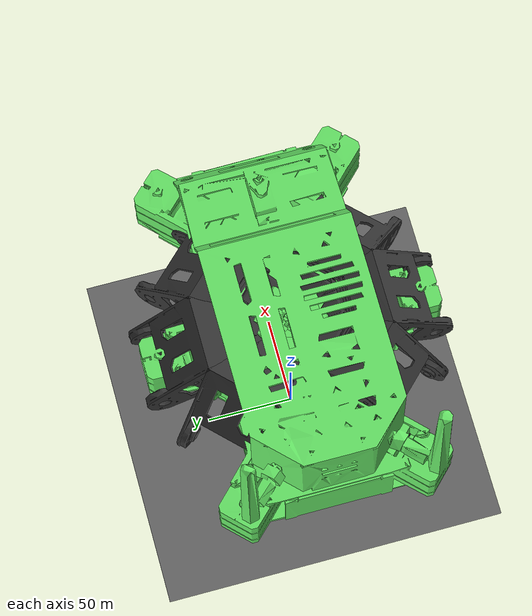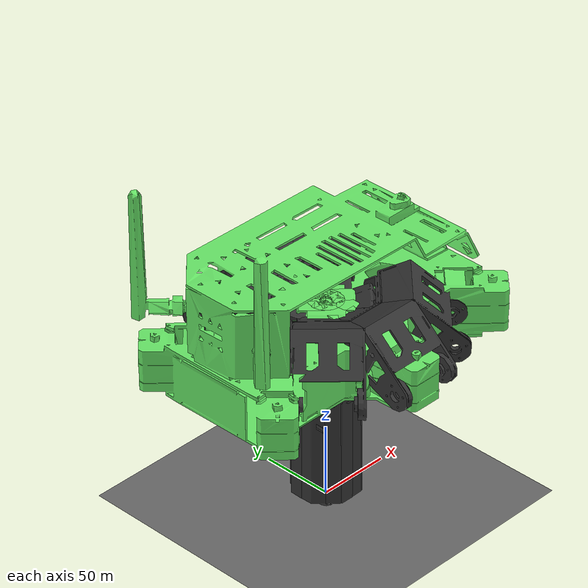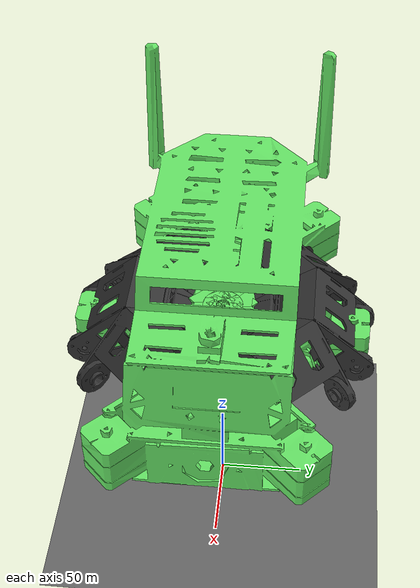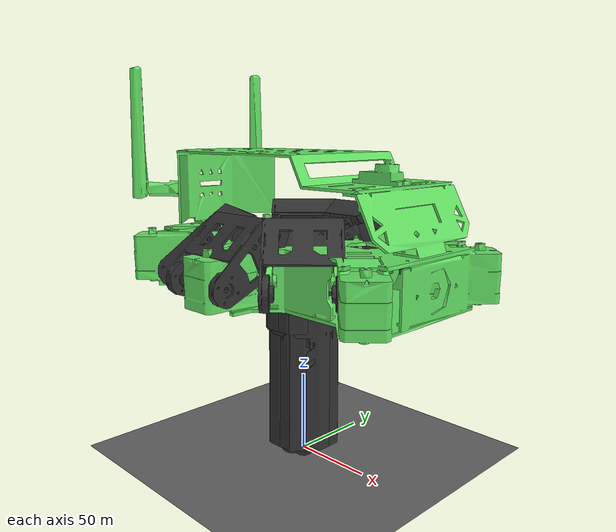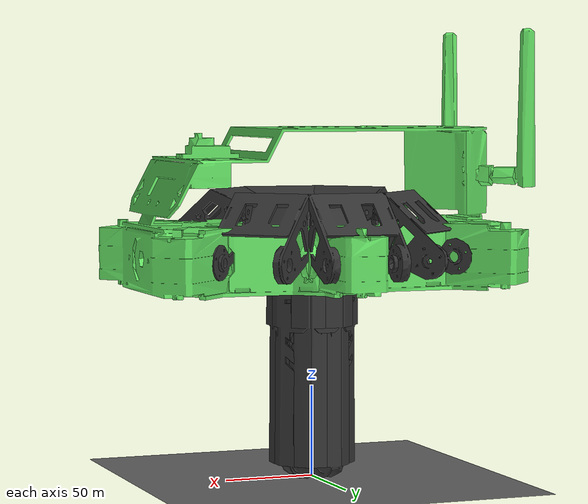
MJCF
<mujoco model="jethexa">
  <option iterations="50" timestep="0.001" solver="PGS" gravity="0 0 -9.81" />

  <compiler angle="radian" meshdir="." eulerseq="zyx" autolimits="true" />

  <default>
    <joint limited="true" damping="0.01" armature="0.01" frictionloss="0.01" />
    <geom condim="4" contype="1" conaffinity="15" friction="0.9 0.2 0.2" solref="0.001 2" />
    <motor ctrllimited="true" />
    <equality solref="0.001 2" />
    <default class="visualgeom">
      <geom material="visualgeom" condim="1" contype="0" conaffinity="0" />
    </default>
  </default>

  <asset>
    <mesh name="body" content_type="model/stl" file="body.stl" />
    <mesh name="body_b" content_type="model/stl" file="body_b.stl" />
    <mesh name="coxa" content_type="model/stl" file="coxa.stl" />
    <mesh name="R_femur" content_type="model/stl" file="R_femur.stl" />
    <mesh name="R_tibia" content_type="model/stl" file="R_tibia.stl" />
    <mesh name="L_femur" content_type="model/stl" file="L_femur.stl" />
    <mesh name="L_tibia" content_type="model/stl" file="L_tibia.stl" />
    <texture name="texplane" type="2d" builtin="checker" rgb1=".0 .0 .0" rgb2=".8 .8 .8" width="100" height="100" />
    <material name="matplane" reflectance="0." texture="texplane" texrepeat="1 1" texuniform="true" />
    <material name="visualgeom" rgba="0.5 0.9 0.2 1" />
  </asset>

  <worldbody>
    <light directional="true" diffuse="0.4 0.4 0.4" specular="0.1 0.1 0.1" pos="0 0 5.0" dir="0 0 -1" castshadow="false" />
    <light directional="true" diffuse="0.6 0.6 0.6" specular="0.2 0.2 0.2" pos="0 0 4" dir="0 0 -1" />
    <geom name="ground" type="plane" pos="0 0 0" size="100 100 0.001" quat="1 0 0 0" material="matplane" condim="3" conaffinity="15" />
    <camera name="fixed" pos="0 -3.0 123.13117630239518" xyaxes="1 0 0 0 0 1" />
    <camera name="track" mode="trackcom" pos="0 -3.0 123.13117630239518" xyaxes="1 0 0 0 0 1" />
    <body name="root" pos="0 0 122.63117630239518" quat="1 0 0 0">
      <freejoint name="root" />
      <site name="imu" size="0.01" pos="0 0 0" />
      <geom name="body_link_collision" pos="0 0 0.075" quat="1 0 0 0" type="mesh" rgba="0.4 0.9 0.4 1" mesh="body" contype="1" conaffinity="0" density="0" group="1" class="visualgeom" />
      <geom type="mesh" rgba="0.4 0.9 0.4 1" mesh="body" pos="0 0 0.075" quat="1 0 0 0" />
      <geom name="body_link_collision_b" pos="0 0 0.075" quat="1 0 0 0" type="mesh" rgba="0.4 0.9 0.4 1" mesh="body_b" contype="1" conaffinity="0" density="0" group="1" class="visualgeom" />
      <geom type="mesh" rgba="0.4 0.9 0.4 1" mesh="body_b" pos="0 0 0.075" quat="1 0 0 0" />
      <body name="coxa_RR" pos="-0.093205 -0.05098 0.075" quat="0.382683 0 0 -0.92388">
        <inertial pos="0 0 0" mass="1" diaginertia="1 1 1" />
        <joint name="coxa_joint_RR" pos="0 0 0" axis="0 0 1" range="-3.14 3.14" actuatorfrcrange="-6 6" damping="0.7" />
        <geom name="coxa_RR_collision" type="mesh" rgba="0.4 0.9 0.4 1" mesh="coxa" contype="1" conaffinity="0" density="0" group="1" class="visualgeom" />
        <geom type="mesh" rgba="0.4 0.9 0.4 1" mesh="coxa" />
        <body name="femur_RR" pos="0.0450503 0 0" quat="0.707107 0.707107 0 0">
          <inertial pos="0 0 0" mass="1" diaginertia="1 1 1" />
          <joint name="femur_joint_RR" pos="0 0 0" axis="0 0 1" range="-3.14 3.14" actuatorfrcrange="-6 6" damping="0.7" />
          <geom name="femur_RR_collision" type="mesh" rgba="0.2 0.2 0.2 1" mesh="R_femur" contype="1" conaffinity="0" density="0" group="1" class="visualgeom" />
          <geom type="mesh" rgba="0.2 0.2 0.2 1" mesh="R_femur" />
          <body name="tibia_RR" pos="0.07703 0 0" quat="0.737277 0 0 -0.67559">
            <inertial pos="0 0 0" mass="1" diaginertia="1 1 1" />
            <joint name="tibia_joint_RR" pos="0 0 0" axis="0 0 1" range="-3.14 3.14" actuatorfrcrange="-6 6" damping="0.7" />
            <geom name="tibia_RR_collision" pos="0 0 0" quat="0.999048 0 0 -0.0436212" type="mesh" rgba="0.2 0.2 0.2 1" mesh="R_tibia" contype="1" conaffinity="0" density="0" group="1" class="visualgeom" />
            <geom type="mesh" rgba="0.2 0.2 0.2 1" mesh="R_tibia" pos="0 0 0" quat="0.999048 0 0 -0.0436212" />
          </body>
        </body>
      </body>
      <body name="coxa_RM" pos="0 -0.073535 0.075" quat="0.707107 0 0 -0.707107">
        <inertial pos="0 0 0" mass="1" diaginertia="1 1 1" />
        <joint name="coxa_joint_RM" pos="0 0 0" axis="0 0 1" range="-3.14 3.14" actuatorfrcrange="-6 6" damping="0.7" />
        <geom name="coxa_RM_collision" type="mesh" rgba="0.4 0.9 0.4 1" mesh="coxa" contype="1" conaffinity="0" density="0" group="1" class="visualgeom" />
        <geom type="mesh" rgba="0.4 0.9 0.4 1" mesh="coxa" />
        <body name="femur_RM" pos="0.0450503 0 0" quat="0.707107 0.707107 0 0">
          <inertial pos="0 0 0" mass="1" diaginertia="1 1 1" />
          <joint name="femur_joint_RM" pos="0 0 0" axis="0 0 1" range="-3.14 3.14" actuatorfrcrange="-6 6" damping="0.7" />
          <geom name="femur_RM_collision" type="mesh" rgba="0.2 0.2 0.2 1" mesh="R_femur" contype="1" conaffinity="0" density="0" group="1" class="visualgeom" />
          <geom type="mesh" rgba="0.2 0.2 0.2 1" mesh="R_femur" />
          <body name="tibia_RM" pos="0.07703 0 0" quat="0.737277 0 0 -0.67559">
            <inertial pos="0 0 0" mass="1" diaginertia="1 1 1" />
            <joint name="tibia_joint_RM" pos="0 0 0" axis="0 0 1" range="-3.14 3.14" actuatorfrcrange="-6 6" damping="0.7" />
            <geom name="tibia_RM_collision" pos="0 0 0" quat="0.999048 0 0 -0.0436212" type="mesh" rgba="0.2 0.2 0.2 1" mesh="R_tibia" contype="1" conaffinity="0" density="0" group="1" class="visualgeom" />
            <geom type="mesh" rgba="0.2 0.2 0.2 1" mesh="R_tibia" pos="0 0 0" quat="0.999048 0 0 -0.0436212" />
          </body>
        </body>
      </body>
      <body name="coxa_RF" pos="0.093205 -0.05098 0.075" quat="0.92388 0 0 -0.382683">
        <inertial pos="0 0 0" mass="1" diaginertia="1 1 1" />
        <joint name="coxa_joint_RF" pos="0 0 0" axis="0 0 1" range="-3.14 3.14" actuatorfrcrange="-6 6" damping="0.7" />
        <geom name="coxa_RF_collision" type="mesh" rgba="0.4 0.9 0.4 1" mesh="coxa" contype="1" conaffinity="0" density="0" group="1" class="visualgeom" />
        <geom type="mesh" rgba="0.4 0.9 0.4 1" mesh="coxa" />
        <body name="femur_RF" pos="0.0450503 0 0" quat="0.707107 0.707107 0 0">
          <inertial pos="0 0 0" mass="1" diaginertia="1 1 1" />
          <joint name="femur_joint_RF" pos="0 0 0" axis="0 0 1" range="-3.14 3.14" actuatorfrcrange="-6 6" damping="0.7" />
          <geom name="femur_RF_collision" type="mesh" rgba="0.2 0.2 0.2 1" mesh="R_femur" contype="1" conaffinity="0" density="0" group="1" class="visualgeom" />
          <geom type="mesh" rgba="0.2 0.2 0.2 1" mesh="R_femur" />
          <body name="tibia_RF" pos="0.07703 0 0" quat="0.737277 0 0 -0.67559">
            <inertial pos="0 0 0" mass="1" diaginertia="1 1 1" />
            <joint name="tibia_joint_RF" pos="0 0 0" axis="0 0 1" range="-3.14 3.14" actuatorfrcrange="-6 6" damping="0.7" />
            <geom name="tibia_RF_collision" pos="0 0 0" quat="0.999048 0 0 -0.0436212" type="mesh" rgba="0.2 0.2 0.2 1" mesh="R_tibia" contype="1" conaffinity="0" density="0" group="1" class="visualgeom" />
            <geom type="mesh" rgba="0.2 0.2 0.2 1" mesh="R_tibia" pos="0 0 0" quat="0.999048 0 0 -0.0436212" />
          </body>
        </body>
      </body>
      <body name="coxa_LR" pos="-0.093205 0.05098 0.075" quat="0.382683 0 0 0.92388">
        <inertial pos="0 0 0" mass="1" diaginertia="1 1 1" />
        <joint name="coxa_joint_LR" pos="0 0 0" axis="0 0 1" range="-3.14 3.14" actuatorfrcrange="-6 6" damping="0.7" />
        <geom name="coxa_LR_collision" type="mesh" rgba="0.4 0.9 0.4 1" mesh="coxa" contype="1" conaffinity="0" density="0" group="1" class="visualgeom" />
        <geom type="mesh" rgba="0.4 0.9 0.4 1" mesh="coxa" />
        <body name="femur_LR" pos="0.0450503 0 0" quat="0.707107 -0.707107 0 0">
          <inertial pos="0 0 0" mass="1" diaginertia="1 1 1" />
          <joint name="femur_joint_LR" pos="0 0 0" axis="0 0 -1" range="-3.14 3.14" actuatorfrcrange="-6 6" damping="0.7" />
          <geom name="femur_LR_collision" type="mesh" rgba="0.2 0.2 0.2 1" mesh="L_femur" contype="1" conaffinity="0" density="0" group="1" class="visualgeom" />
          <geom type="mesh" rgba="0.2 0.2 0.2 1" mesh="L_femur" />
          <body name="tibia_LR" pos="0.07703 0 0" quat="0.737277 0 0 0.67559">
            <inertial pos="0 0 0" mass="1" diaginertia="1 1 1" />
            <joint name="tibia_joint_LR" pos="0 0 0" axis="0 0 -1" range="-3.14 3.14" actuatorfrcrange="-6 6" damping="0.7" />
            <geom name="tibia_LR_collision" pos="0 0 0" quat="0.999048 0 0 0.0436212" type="mesh" rgba="0.2 0.2 0.2 1" mesh="L_tibia" contype="1" conaffinity="0" density="0" group="1" class="visualgeom" />
            <geom type="mesh" rgba="0.2 0.2 0.2 1" mesh="L_tibia" pos="0 0 0" quat="0.999048 0 0 0.0436212" />
          </body>
        </body>
      </body>
      <body name="coxa_LM" pos="0 0.07353 0.075" quat="0.707107 0 0 0.707107">
        <inertial pos="0 0 0" mass="1" diaginertia="1 1 1" />
        <joint name="coxa_joint_LM" pos="0 0 0" axis="0 0 1" range="-3.14 3.14" actuatorfrcrange="-6 6" damping="0.7" />
        <geom name="coxa_LM_collision" type="mesh" rgba="0.4 0.9 0.4 1" mesh="coxa" contype="1" conaffinity="0" density="0" group="1" class="visualgeom" />
        <geom type="mesh" rgba="0.4 0.9 0.4 1" mesh="coxa" />
        <body name="femur_LM" pos="0.0450503 0 0" quat="0.707107 -0.707107 0 0">
          <inertial pos="0 0 0" mass="1" diaginertia="1 1 1" />
          <joint name="femur_joint_LM" pos="0 0 0" axis="0 0 -1" range="-3.14 3.14" actuatorfrcrange="-6 6" damping="0.7" />
          <geom name="femur_LM_collision" type="mesh" rgba="0.2 0.2 0.2 1" mesh="L_femur" contype="1" conaffinity="0" density="0" group="1" class="visualgeom" />
          <geom type="mesh" rgba="0.2 0.2 0.2 1" mesh="L_femur" />
          <body name="tibia_LM" pos="0.07703 0 0" quat="0.737277 0 0 0.67559">
            <inertial pos="0 0 0" mass="1" diaginertia="1 1 1" />
            <joint name="tibia_joint_LM" pos="0 0 0" axis="0 0 -1" range="-3.14 3.14" actuatorfrcrange="-6 6" damping="0.7" />
            <geom name="tibia_LM_collision" pos="0 0 0" quat="0.999048 0 0 0.0436212" type="mesh" rgba="0.2 0.2 0.2 1" mesh="L_tibia" contype="1" conaffinity="0" density="0" group="1" class="visualgeom" />
            <geom type="mesh" rgba="0.2 0.2 0.2 1" mesh="L_tibia" pos="0 0 0" quat="0.999048 0 0 0.0436212" />
          </body>
        </body>
      </body>
      <body name="coxa_LF" pos="0.093205 0.05098 0.075" quat="0.92388 0 0 0.382683">
        <inertial pos="0 0 0" mass="1" diaginertia="1 1 1" />
        <joint name="coxa_joint_LF" pos="0 0 0" axis="0 0 1" range="-3.14 3.14" actuatorfrcrange="-6 6" damping="0.7" />
        <geom name="coxa_LF_collision" type="mesh" rgba="0.4 0.9 0.4 1" mesh="coxa" contype="1" conaffinity="0" density="0" group="1" class="visualgeom" />
        <geom type="mesh" rgba="0.4 0.9 0.4 1" mesh="coxa" />
        <body name="femur_LF" pos="0.0450503 0 0" quat="0.707107 -0.707107 0 0">
          <inertial pos="0 0 0" mass="1" diaginertia="1 1 1" />
          <joint name="femur_joint_LF" pos="0 0 0" axis="0 0 -1" range="-3.14 3.14" actuatorfrcrange="-6 6" damping="0.7" />
          <geom name="femur_LF_collision" type="mesh" rgba="0.2 0.2 0.2 1" mesh="L_femur" contype="1" conaffinity="0" density="0" group="1" class="visualgeom" />
          <geom type="mesh" rgba="0.2 0.2 0.2 1" mesh="L_femur" />
          <body name="tibia_LF" pos="0.07703 0 0" quat="0.737277 0 0 0.67559">
            <inertial pos="0 0 0" mass="1" diaginertia="1 1 1" />
            <joint name="tibia_joint_LF" pos="0 0 0" axis="0 0 -1" range="-3.14 3.14" actuatorfrcrange="-6 6" damping="0.7" />
            <geom name="tibia_LF_collision" pos="0 0 0" quat="0.999048 0 0 0.0436212" type="mesh" rgba="0.2 0.2 0.2 1" mesh="L_tibia" contype="1" conaffinity="0" density="0" group="1" class="visualgeom" />
            <geom type="mesh" rgba="0.2 0.2 0.2 1" mesh="L_tibia" pos="0 0 0" quat="0.999048 0 0 0.0436212" />
          </body>
        </body>
      </body>
    </body>
  </worldbody>

  <actuator>
    <motor name="coxa_joint_RR" joint="coxa_joint_RR" ctrllimited="true" ctrlrange="-6 6" gear="1" />
    <motor name="femur_joint_RR" joint="femur_joint_RR" ctrllimited="true" ctrlrange="-6 6" gear="1" />
    <motor name="tibia_joint_RR" joint="tibia_joint_RR" ctrllimited="true" ctrlrange="-6 6" gear="1" />
    <motor name="coxa_joint_RM" joint="coxa_joint_RM" ctrllimited="true" ctrlrange="-6 6" gear="1" />
    <motor name="femur_joint_RM" joint="femur_joint_RM" ctrllimited="true" ctrlrange="-6 6" gear="1" />
    <motor name="tibia_joint_RM" joint="tibia_joint_RM" ctrllimited="true" ctrlrange="-6 6" gear="1" />
    <motor name="coxa_joint_RF" joint="coxa_joint_RF" ctrllimited="true" ctrlrange="-6 6" gear="1" />
    <motor name="femur_joint_RF" joint="femur_joint_RF" ctrllimited="true" ctrlrange="-6 6" gear="1" />
    <motor name="tibia_joint_RF" joint="tibia_joint_RF" ctrllimited="true" ctrlrange="-6 6" gear="1" />
    <motor name="coxa_joint_LR" joint="coxa_joint_LR" ctrllimited="true" ctrlrange="-6 6" gear="1" />
    <motor name="femur_joint_LR" joint="femur_joint_LR" ctrllimited="true" ctrlrange="-6 6" gear="1" />
    <motor name="tibia_joint_LR" joint="tibia_joint_LR" ctrllimited="true" ctrlrange="-6 6" gear="1" />
    <motor name="coxa_joint_LM" joint="coxa_joint_LM" ctrllimited="true" ctrlrange="-6 6" gear="1" />
    <motor name="femur_joint_LM" joint="femur_joint_LM" ctrllimited="true" ctrlrange="-6 6" gear="1" />
    <motor name="tibia_joint_LM" joint="tibia_joint_LM" ctrllimited="true" ctrlrange="-6 6" gear="1" />
    <motor name="coxa_joint_LF" joint="coxa_joint_LF" ctrllimited="true" ctrlrange="-6 6" gear="1" />
    <motor name="femur_joint_LF" joint="femur_joint_LF" ctrllimited="true" ctrlrange="-6 6" gear="1" />
    <motor name="tibia_joint_LF" joint="tibia_joint_LF" ctrllimited="true" ctrlrange="-6 6" gear="1" />
  </actuator>

  <sensor>
    <actuatorpos name="coxa_joint_RR_p" actuator="coxa_joint_RR" />
    <actuatorvel name="coxa_joint_RR_v" actuator="coxa_joint_RR" />
    <actuatorfrc name="coxa_joint_RR_f" actuator="coxa_joint_RR" noise="0.001" />
    <actuatorpos name="femur_joint_RR_p" actuator="femur_joint_RR" />
    <actuatorvel name="femur_joint_RR_v" actuator="femur_joint_RR" />
    <actuatorfrc name="femur_joint_RR_f" actuator="femur_joint_RR" noise="0.001" />
    <actuatorpos name="tibia_joint_RR_p" actuator="tibia_joint_RR" />
    <actuatorvel name="tibia_joint_RR_v" actuator="tibia_joint_RR" />
    <actuatorfrc name="tibia_joint_RR_f" actuator="tibia_joint_RR" noise="0.001" />
    <actuatorpos name="coxa_joint_RM_p" actuator="coxa_joint_RM" />
    <actuatorvel name="coxa_joint_RM_v" actuator="coxa_joint_RM" />
    <actuatorfrc name="coxa_joint_RM_f" actuator="coxa_joint_RM" noise="0.001" />
    <actuatorpos name="femur_joint_RM_p" actuator="femur_joint_RM" />
    <actuatorvel name="femur_joint_RM_v" actuator="femur_joint_RM" />
    <actuatorfrc name="femur_joint_RM_f" actuator="femur_joint_RM" noise="0.001" />
    <actuatorpos name="tibia_joint_RM_p" actuator="tibia_joint_RM" />
    <actuatorvel name="tibia_joint_RM_v" actuator="tibia_joint_RM" />
    <actuatorfrc name="tibia_joint_RM_f" actuator="tibia_joint_RM" noise="0.001" />
    <actuatorpos name="coxa_joint_RF_p" actuator="coxa_joint_RF" />
    <actuatorvel name="coxa_joint_RF_v" actuator="coxa_joint_RF" />
    <actuatorfrc name="coxa_joint_RF_f" actuator="coxa_joint_RF" noise="0.001" />
    <actuatorpos name="femur_joint_RF_p" actuator="femur_joint_RF" />
    <actuatorvel name="femur_joint_RF_v" actuator="femur_joint_RF" />
    <actuatorfrc name="femur_joint_RF_f" actuator="femur_joint_RF" noise="0.001" />
    <actuatorpos name="tibia_joint_RF_p" actuator="tibia_joint_RF" />
    <actuatorvel name="tibia_joint_RF_v" actuator="tibia_joint_RF" />
    <actuatorfrc name="tibia_joint_RF_f" actuator="tibia_joint_RF" noise="0.001" />
    <actuatorpos name="coxa_joint_LR_p" actuator="coxa_joint_LR" />
    <actuatorvel name="coxa_joint_LR_v" actuator="coxa_joint_LR" />
    <actuatorfrc name="coxa_joint_LR_f" actuator="coxa_joint_LR" noise="0.001" />
    <actuatorpos name="femur_joint_LR_p" actuator="femur_joint_LR" />
    <actuatorvel name="femur_joint_LR_v" actuator="femur_joint_LR" />
    <actuatorfrc name="femur_joint_LR_f" actuator="femur_joint_LR" noise="0.001" />
    <actuatorpos name="tibia_joint_LR_p" actuator="tibia_joint_LR" />
    <actuatorvel name="tibia_joint_LR_v" actuator="tibia_joint_LR" />
    <actuatorfrc name="tibia_joint_LR_f" actuator="tibia_joint_LR" noise="0.001" />
    <actuatorpos name="coxa_joint_LM_p" actuator="coxa_joint_LM" />
    <actuatorvel name="coxa_joint_LM_v" actuator="coxa_joint_LM" />
    <actuatorfrc name="coxa_joint_LM_f" actuator="coxa_joint_LM" noise="0.001" />
    <actuatorpos name="femur_joint_LM_p" actuator="femur_joint_LM" />
    <actuatorvel name="femur_joint_LM_v" actuator="femur_joint_LM" />
    <actuatorfrc name="femur_joint_LM_f" actuator="femur_joint_LM" noise="0.001" />
    <actuatorpos name="tibia_joint_LM_p" actuator="tibia_joint_LM" />
    <actuatorvel name="tibia_joint_LM_v" actuator="tibia_joint_LM" />
    <actuatorfrc name="tibia_joint_LM_f" actuator="tibia_joint_LM" noise="0.001" />
    <actuatorpos name="coxa_joint_LF_p" actuator="coxa_joint_LF" />
    <actuatorvel name="coxa_joint_LF_v" actuator="coxa_joint_LF" />
    <actuatorfrc name="coxa_joint_LF_f" actuator="coxa_joint_LF" noise="0.001" />
    <actuatorpos name="femur_joint_LF_p" actuator="femur_joint_LF" />
    <actuatorvel name="femur_joint_LF_v" actuator="femur_joint_LF" />
    <actuatorfrc name="femur_joint_LF_f" actuator="femur_joint_LF" noise="0.001" />
    <actuatorpos name="tibia_joint_LF_p" actuator="tibia_joint_LF" />
    <actuatorvel name="tibia_joint_LF_v" actuator="tibia_joint_LF" />
    <actuatorfrc name="tibia_joint_LF_f" actuator="tibia_joint_LF" noise="0.001" />
    <framequat name="orientation" objtype="site" noise="0.001" objname="imu" />
    <gyro name="angular-velocity" site="imu" noise="0.005" cutoff="34.9" />
  </sensor>
</mujoco>
